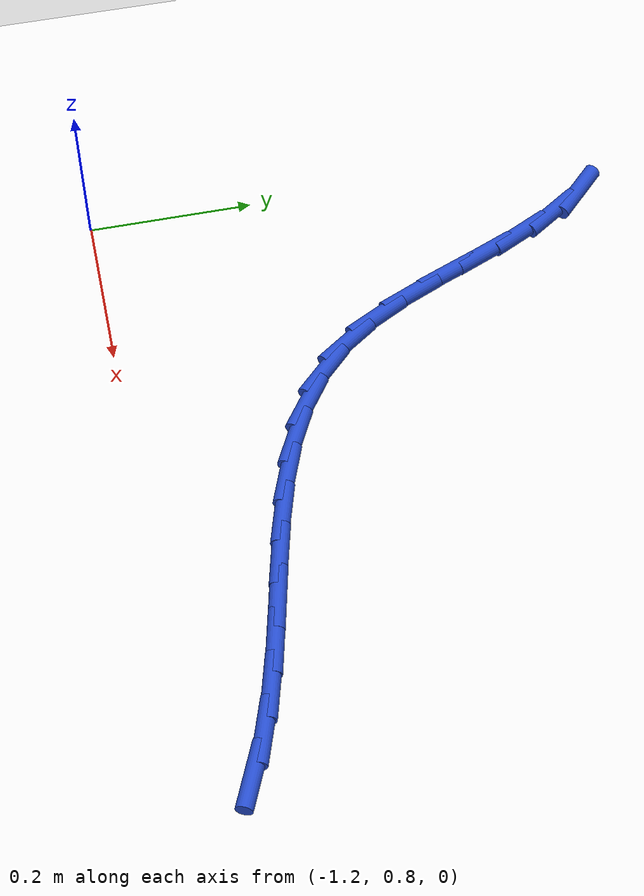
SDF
<sdf version="1.6">
 <world name="default">
  <model name="ground_plane">
   <static>1</static>
   <link name="link">
    <collision name="collision">
     <geometry><plane><normal>0 0 1</normal><size>100 100</size></plane></geometry>
     <surface><friction><ode><mu>100</mu><mu2>50</mu2></ode></friction></surface>
    </collision>
    <visual name="visual">
     <cast_shadows>0</cast_shadows>
     <geometry><plane><normal>0 0 1</normal><size>100 100</size></plane></geometry>
     <material>
      <script><uri>file://media/materials/scripts/gazebo.material</uri><name>Gazebo/WhiteGlow</name></script>
     </material>
    </visual>
   </link>
  </model>
  <model name="line">
   <link name="link_19">
    <pose>-0.42716067731445007 0.8641523057315761 0.01 0 1.57 -0.40893463788574597</pose>
    <collision name="collision">
     <geometry><cylinder><radius>0.01</radius><length>0.08</length></cylinder></geometry>
    </collision>
    <visual name="visual">
     <material>
      <script><name>Gazebo/Blue</name><uri>file://media/materials/scripts/gazebo.material</uri></script>
     </material>
     <geometry><cylinder><radius>0.01</radius><length>0.08</length></cylinder></geometry>
    </visual>
   </link>
   <link name="link_20">
    <pose>-0.47523321694559 0.8849852703661415 0.01 0 1.57 -0.322410514022538</pose>
    <collision name="collision">
     <geometry><cylinder><radius>0.01</radius><length>0.08</length></cylinder></geometry>
    </collision>
    <visual name="visual">
     <material>
      <script><name>Gazebo/Blue</name><uri>file://media/materials/scripts/gazebo.material</uri></script>
     </material>
     <geometry><cylinder><radius>0.01</radius><length>0.08</length></cylinder></geometry>
    </visual>
   </link>
   <link name="link_21">
    <pose>-0.5259186442336489 0.9019175880185308 0.01 0 1.57 -0.2646112176032231</pose>
    <collision name="collision">
     <geometry><cylinder><radius>0.01</radius><length>0.08</length></cylinder></geometry>
    </collision>
    <visual name="visual">
     <material>
      <script><name>Gazebo/Blue</name><uri>file://media/materials/scripts/gazebo.material</uri></script>
     </material>
     <geometry><cylinder><radius>0.01</radius><length>0.08</length></cylinder></geometry>
    </visual>
   </link>
   <link name="link_22">
    <pose>-0.5783613907009115 0.9161277464021355 0.01 0 1.57 -0.23312956437793111</pose>
    <collision name="collision">
     <geometry><cylinder><radius>0.01</radius><length>0.08</length></cylinder></geometry>
    </collision>
    <visual name="visual">
     <material>
      <script><name>Gazebo/Blue</name><uri>file://media/materials/scripts/gazebo.material</uri></script>
     </material>
     <geometry><cylinder><radius>0.01</radius><length>0.08</length></cylinder></geometry>
    </visual>
   </link>
   <link name="link_23">
    <pose>-0.6317058877083502 0.9287942334876049 0.01 0 1.57 -0.22644988240983738</pose>
    <collision name="collision">
     <geometry><cylinder><radius>0.01</radius><length>0.08</length></cylinder></geometry>
    </collision>
    <visual name="visual">
     <material>
      <script><name>Gazebo/Blue</name><uri>file://media/materials/scripts/gazebo.material</uri></script>
     </material>
     <geometry><cylinder><radius>0.01</radius><length>0.08</length></cylinder></geometry>
    </visual>
   </link>
   <link name="link_24">
    <pose>-0.6850965666169365 0.9410955372455871 0.01 0 1.57 -0.24442881226614102</pose>
    <collision name="collision">
     <geometry><cylinder><radius>0.01</radius><length>0.08</length></cylinder></geometry>
    </collision>
    <visual name="visual">
     <material>
      <script><name>Gazebo/Blue</name><uri>file://media/materials/scripts/gazebo.material</uri></script>
     </material>
     <geometry><cylinder><radius>0.01</radius><length>0.08</length></cylinder></geometry>
    </visual>
   </link>
   <link name="link_25">
    <pose>-0.7376778587876425 0.9542101456467309 0.01 0 1.57 -0.2884179342264862</pose>
    <collision name="collision">
     <geometry><cylinder><radius>0.01</radius><length>0.08</length></cylinder></geometry>
    </collision>
    <visual name="visual">
     <material>
      <script><name>Gazebo/Blue</name><uri>file://media/materials/scripts/gazebo.material</uri></script>
     </material>
     <geometry><cylinder><radius>0.01</radius><length>0.08</length></cylinder></geometry>
    </visual>
   </link>
   <link name="link_26">
    <pose>-0.7885941955814394 0.9693165466616845 0.01 0 1.57 -0.3610919839227639</pose>
    <collision name="collision">
     <geometry><cylinder><radius>0.01</radius><length>0.08</length></cylinder></geometry>
    </collision>
    <visual name="visual">
     <material>
      <script><name>Gazebo/Blue</name><uri>file://media/materials/scripts/gazebo.material</uri></script>
     </material>
     <geometry><cylinder><radius>0.01</radius><length>0.08</length></cylinder></geometry>
    </visual>
   </link>
   <link name="link_27">
    <pose>-0.8369900083592996 0.9875932282610964 0.01 0 1.57 -0.46569953361430766</pose>
    <collision name="collision">
     <geometry><cylinder><radius>0.01</radius><length>0.08</length></cylinder></geometry>
    </collision>
    <visual name="visual">
     <material>
      <script><name>Gazebo/Blue</name><uri>file://media/materials/scripts/gazebo.material</uri></script>
     </material>
     <geometry><cylinder><radius>0.01</radius><length>0.08</length></cylinder></geometry>
    </visual>
   </link>
   <link name="link_28">
    <pose>-0.8820097284821946 1.0102186784156155 0.01 0 1.57 -0.6041315512340685</pose>
    <collision name="collision">
     <geometry><cylinder><radius>0.01</radius><length>0.08</length></cylinder></geometry>
    </collision>
    <visual name="visual">
     <material>
      <script><name>Gazebo/Blue</name><uri>file://media/materials/scripts/gazebo.material</uri></script>
     </material>
     <geometry><cylinder><radius>0.01</radius><length>0.08</length></cylinder></geometry>
    </visual>
   </link>
   <link name="link_29">
    <pose>-0.9227977873110964 1.03837138509589 0.01 0 1.57 -0.7734601490006462</pose>
    <collision name="collision">
     <geometry><cylinder><radius>0.01</radius><length>0.08</length></cylinder></geometry>
    </collision>
    <visual name="visual">
     <material>
      <script><name>Gazebo/Blue</name><uri>file://media/materials/scripts/gazebo.material</uri></script>
     </material>
     <geometry><cylinder><radius>0.01</radius><length>0.08</length></cylinder></geometry>
    </visual>
   </link>
   <link name="link_30">
    <pose>-0.9584986162069769 1.073229836272569 0.01 0 1.57 -0.9501460204746253</pose>
    <collision name="collision">
     <geometry><cylinder><radius>0.01</radius><length>0.08</length></cylinder></geometry>
    </collision>
    <visual name="visual">
     <material>
      <script><name>Gazebo/Blue</name><uri>file://media/materials/scripts/gazebo.material</uri></script>
     </material>
     <geometry><cylinder><radius>0.01</radius><length>0.08</length></cylinder></geometry>
    </visual>
   </link>
   <link name="link_31">
    <pose>-0.9886439385506127 1.1153975423496196 0.01 0 1.57 -1.0762772994941054</pose>
    <collision name="collision">
     <geometry><cylinder><radius>0.01</radius><length>0.08</length></cylinder></geometry>
    </collision>
    <visual name="visual">
     <material>
      <script><name>Gazebo/Blue</name><uri>file://media/materials/scripts/gazebo.material</uri></script>
     </material>
     <geometry><cylinder><radius>0.01</radius><length>0.08</length></cylinder></geometry>
    </visual>
   </link>
   <link name="link_32">
    <pose>-1.014366243199333 1.1631015014574133 0.01 0 1.57 -1.1485752905730249</pose>
    <collision name="collision">
     <geometry><cylinder><radius>0.01</radius><length>0.08</length></cylinder></geometry>
    </collision>
    <visual name="visual">
     <material>
      <script><name>Gazebo/Blue</name><uri>file://media/materials/scripts/gazebo.material</uri></script>
     </material>
     <geometry><cylinder><radius>0.01</radius><length>0.08</length></cylinder></geometry>
    </visual>
   </link>
   <link name="link_33">
    <pose>-1.037211536472663 1.2139547996082418 0.01 0 1.57 -1.175877479725167</pose>
    <collision name="collision">
     <geometry><cylinder><radius>0.01</radius><length>0.08</length></cylinder></geometry>
    </collision>
    <visual name="visual">
     <material>
      <script><name>Gazebo/Blue</name><uri>file://media/materials/scripts/gazebo.material</uri></script>
     </material>
     <geometry><cylinder><radius>0.01</radius><length>0.08</length></cylinder></geometry>
    </visual>
   </link>
   <link name="link_34">
    <pose>-1.0587258252114158 1.2655705220404894 0.01 0 1.57 -1.160770388033132</pose>
    <collision name="collision">
     <geometry><cylinder><radius>0.01</radius><length>0.08</length></cylinder></geometry>
    </collision>
    <visual name="visual">
     <material>
      <script><name>Gazebo/Blue</name><uri>file://media/materials/scripts/gazebo.material</uri></script>
     </material>
     <geometry><cylinder><radius>0.01</radius><length>0.08</length></cylinder></geometry>
    </visual>
   </link>
   <link name="link_35">
    <pose>-1.0804551162564031 1.3155617539925404 0.01 0 1.57 -1.098480471711266</pose>
    <collision name="collision">
     <geometry><cylinder><radius>0.01</radius><length>0.08</length></cylinder></geometry>
    </collision>
    <visual name="visual">
     <material>
      <script><name>Gazebo/Blue</name><uri>file://media/materials/scripts/gazebo.material</uri></script>
     </material>
     <geometry><cylinder><radius>0.01</radius><length>0.08</length></cylinder></geometry>
    </visual>
   </link>
   <link name="link_36">
    <pose>-1.1039454164484377 1.361541580702779 0.01 0 1.57 -0.9756629332985222</pose>
    <collision name="collision">
     <geometry><cylinder><radius>0.01</radius><length>0.08</length></cylinder></geometry>
    </collision>
    <visual name="visual">
     <material>
      <script><name>Gazebo/Blue</name><uri>file://media/materials/scripts/gazebo.material</uri></script>
     </material>
     <geometry><cylinder><radius>0.01</radius><length>0.08</length></cylinder></geometry>
    </visual>
   </link>
   <link name="link_37">
    <pose>-1.1307427326283317 1.4011230874095895 0.01 0 1.57 -0.7718781270696224</pose>
    <collision name="collision">
     <geometry><cylinder><radius>0.01</radius><length>0.08</length></cylinder></geometry>
    </collision>
    <visual name="visual">
     <material>
      <script><name>Gazebo/Blue</name><uri>file://media/materials/scripts/gazebo.material</uri></script>
     </material>
     <geometry><cylinder><radius>0.01</radius><length>0.08</length></cylinder></geometry>
    </visual>
   </link>
  </model>
 </world>
</sdf>
